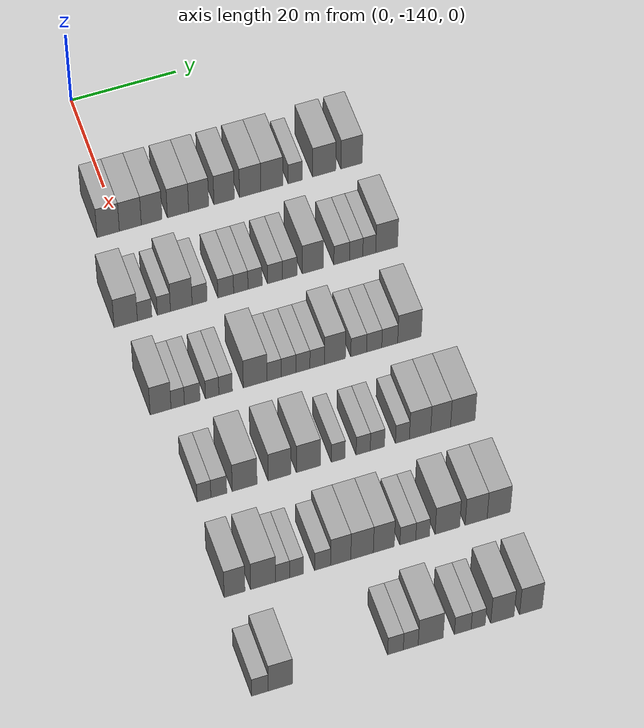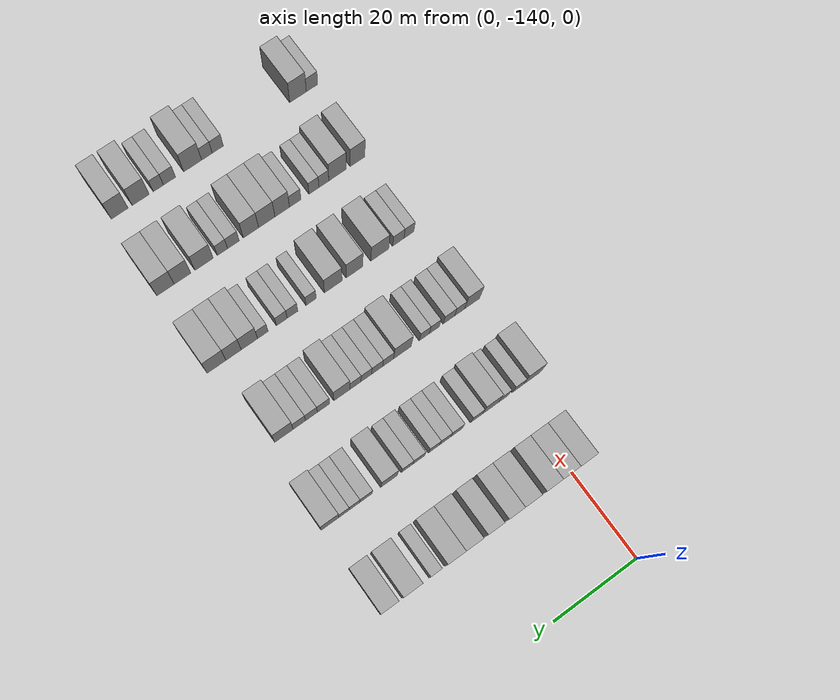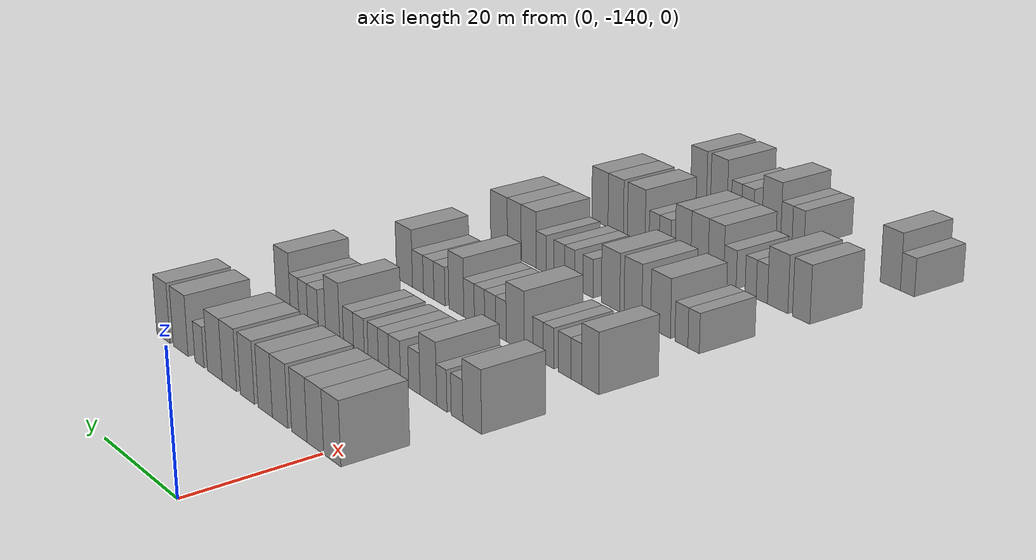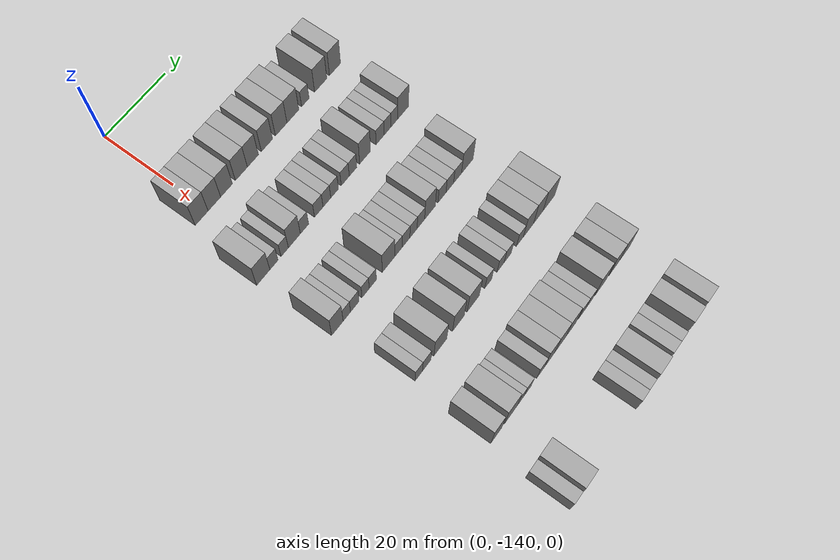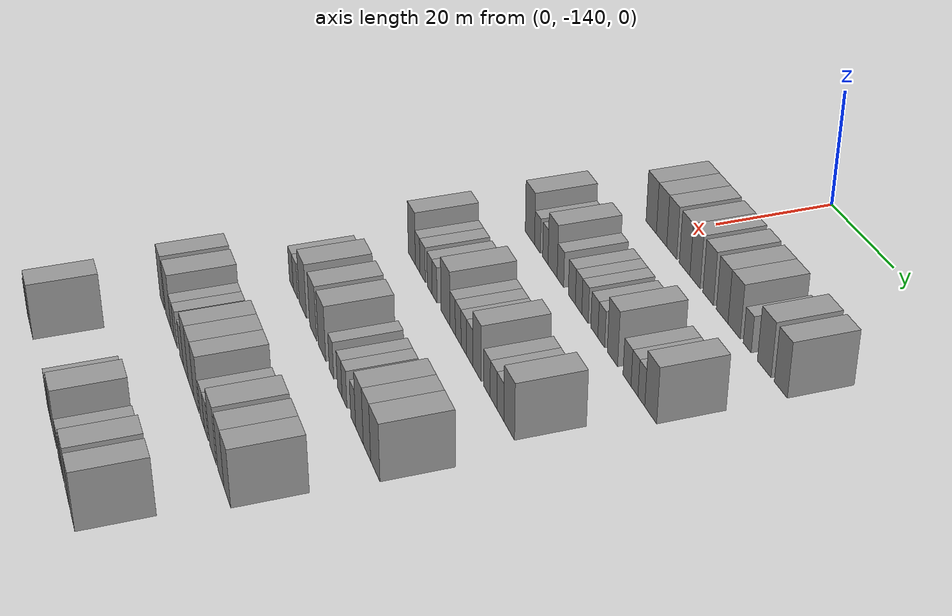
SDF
<sdf version="1.6">
 <world name="default">
  <model name="building_50">
   <static>1</static>
   <pose>25.0000 -142.2751 0 0.000000 0.000000 0.000000</pose>
   <link name="link">
    <pose>0 0 4.50 0 0 0</pose>
    <collision name="collision"><geometry><box><size>10.0000 4.1628 9.0000</size></box></geometry></collision>
    <visual name="visual">
     <cast_shadows>0</cast_shadows>
     <geometry><box><size>10.0000 4.1628 9.0000</size></box></geometry>
     <material>
      <script>
       <uri>model://grey_wall/materials/scripts</uri>
       <uri>model://grey_wall/materials/textures</uri>
       <name>vrc/grey_wall</name>
      </script>
     </material>
    </visual>
   </link>
  </model>
  <model name="building_51">
   <static>1</static>
   <pose>25.0000 -138.1461 0 0.000000 0.000000 0.000000</pose>
   <link name="link">
    <pose>0 0 4.50 0 0 0</pose>
    <collision name="collision"><geometry><box><size>10.0000 4.0952 9.0000</size></box></geometry></collision>
    <visual name="visual">
     <cast_shadows>0</cast_shadows>
     <geometry><box><size>10.0000 4.0952 9.0000</size></box></geometry>
     <material>
      <script>
       <uri>model://grey_wall/materials/scripts</uri>
       <uri>model://grey_wall/materials/textures</uri>
       <name>vrc/grey_wall</name>
      </script>
     </material>
    </visual>
   </link>
  </model>
  <model name="building_52">
   <static>1</static>
   <pose>25.0000 -134.1554 0 0.000000 0.000000 0.000000</pose>
   <link name="link">
    <pose>0 0 4.50 0 0 0</pose>
    <collision name="collision"><geometry><box><size>10.0000 3.8862 9.0000</size></box></geometry></collision>
    <visual name="visual">
     <cast_shadows>0</cast_shadows>
     <geometry><box><size>10.0000 3.8862 9.0000</size></box></geometry>
     <material>
      <script>
       <uri>model://grey_wall/materials/scripts</uri>
       <uri>model://grey_wall/materials/textures</uri>
       <name>vrc/grey_wall</name>
      </script>
     </material>
    </visual>
   </link>
  </model>
  <model name="building_53">
   <static>1</static>
   <pose>25.0000 -129.2157 0 0.000000 0.000000 0.000000</pose>
   <link name="link">
    <pose>0 0 4.50 0 0 0</pose>
    <collision name="collision"><geometry><box><size>10.0000 3.9932 9.0000</size></box></geometry></collision>
    <visual name="visual">
     <cast_shadows>0</cast_shadows>
     <geometry><box><size>10.0000 3.9932 9.0000</size></box></geometry>
     <material>
      <script>
       <uri>model://grey_wall/materials/scripts</uri>
       <uri>model://grey_wall/materials/textures</uri>
       <name>vrc/grey_wall</name>
      </script>
     </material>
    </visual>
   </link>
  </model>
  <model name="building_54">
   <static>1</static>
   <pose>25.0000 -125.3410 0 0.000000 0.000000 0.000000</pose>
   <link name="link">
    <pose>0 0 4.50 0 0 0</pose>
    <collision name="collision"><geometry><box><size>10.0000 3.7561 9.0000</size></box></geometry></collision>
    <visual name="visual">
     <cast_shadows>0</cast_shadows>
     <geometry><box><size>10.0000 3.7561 9.0000</size></box></geometry>
     <material>
      <script>
       <uri>model://grey_wall/materials/scripts</uri>
       <uri>model://grey_wall/materials/textures</uri>
       <name>vrc/grey_wall</name>
      </script>
     </material>
    </visual>
   </link>
  </model>
  <model name="building_55">
   <static>1</static>
   <pose>25.0000 -120.5500 0 0.000000 0.000000 0.000000</pose>
   <link name="link">
    <pose>0 0 4.50 0 0 0</pose>
    <collision name="collision"><geometry><box><size>10.0000 3.8260 9.0000</size></box></geometry></collision>
    <visual name="visual">
     <cast_shadows>0</cast_shadows>
     <geometry><box><size>10.0000 3.8260 9.0000</size></box></geometry>
     <material>
      <script>
       <uri>model://grey_wall/materials/scripts</uri>
       <uri>model://grey_wall/materials/textures</uri>
       <name>vrc/grey_wall</name>
      </script>
     </material>
    </visual>
   </link>
  </model>
  <model name="building_56">
   <static>1</static>
   <pose>25.0000 -115.6265 0 0.000000 0.000000 0.000000</pose>
   <link name="link">
    <pose>0 0 4.50 0 0 0</pose>
    <collision name="collision"><geometry><box><size>10.0000 4.0209 9.0000</size></box></geometry></collision>
    <visual name="visual">
     <cast_shadows>0</cast_shadows>
     <geometry><box><size>10.0000 4.0209 9.0000</size></box></geometry>
     <material>
      <script>
       <uri>model://grey_wall/materials/scripts</uri>
       <uri>model://grey_wall/materials/textures</uri>
       <name>vrc/grey_wall</name>
      </script>
     </material>
    </visual>
   </link>
  </model>
  <model name="building_57">
   <static>1</static>
   <pose>25.0000 -111.5318 0 0.000000 0.000000 0.000000</pose>
   <link name="link">
    <pose>0 0 4.50 0 0 0</pose>
    <collision name="collision"><geometry><box><size>10.0000 4.1685 9.0000</size></box></geometry></collision>
    <visual name="visual">
     <cast_shadows>0</cast_shadows>
     <geometry><box><size>10.0000 4.1685 9.0000</size></box></geometry>
     <material>
      <script>
       <uri>model://grey_wall/materials/scripts</uri>
       <uri>model://grey_wall/materials/textures</uri>
       <name>vrc/grey_wall</name>
      </script>
     </material>
    </visual>
   </link>
  </model>
  <model name="building_58">
   <static>1</static>
   <pose>25.0000 -107.1280 0 0.000000 0.000000 0.000000</pose>
   <link name="link">
    <pose>0 0 3.00 0 0 0</pose>
    <collision name="collision"><geometry><box><size>10.0000 2.6391 6.0000</size></box></geometry></collision>
    <visual name="visual">
     <cast_shadows>0</cast_shadows>
     <geometry><box><size>10.0000 2.6391 6.0000</size></box></geometry>
     <material>
      <script>
       <uri>model://grey_wall/materials/scripts</uri>
       <uri>model://grey_wall/materials/textures</uri>
       <name>vrc/grey_wall</name>
      </script>
     </material>
    </visual>
   </link>
  </model>
  <model name="building_59">
   <static>1</static>
   <pose>25.0000 -101.6160 0 0.000000 0.000000 0.000000</pose>
   <link name="link">
    <pose>0 0 4.50 0 0 0</pose>
    <collision name="collision"><geometry><box><size>10.0000 4.3848 9.0000</size></box></geometry></collision>
    <visual name="visual">
     <cast_shadows>0</cast_shadows>
     <geometry><box><size>10.0000 4.3848 9.0000</size></box></geometry>
     <material>
      <script>
       <uri>model://grey_wall/materials/scripts</uri>
       <uri>model://grey_wall/materials/textures</uri>
       <name>vrc/grey_wall</name>
      </script>
     </material>
    </visual>
   </link>
  </model>
  <model name="building_60">
   <static>1</static>
   <pose>25.0000 -96.4047 0 0.000000 0.000000 0.000000</pose>
   <link name="link">
    <pose>0 0 4.50 0 0 0</pose>
    <collision name="collision"><geometry><box><size>10.0000 4.0377 9.0000</size></box></geometry></collision>
    <visual name="visual">
     <cast_shadows>0</cast_shadows>
     <geometry><box><size>10.0000 4.0377 9.0000</size></box></geometry>
     <material>
      <script>
       <uri>model://grey_wall/materials/scripts</uri>
       <uri>model://grey_wall/materials/textures</uri>
       <name>vrc/grey_wall</name>
      </script>
     </material>
    </visual>
   </link>
  </model>
  <model name="building_220">
   <static>1</static>
   <pose>44.0000 -144.9630 0 0.000000 0.000000 0.000000</pose>
   <link name="link">
    <pose>0 0 4.50 0 0 0</pose>
    <collision name="collision"><geometry><box><size>10.0000 4.2809 9.0000</size></box></geometry></collision>
    <visual name="visual">
     <cast_shadows>0</cast_shadows>
     <geometry><box><size>10.0000 4.2809 9.0000</size></box></geometry>
     <material>
      <script>
       <uri>model://grey_wall/materials/scripts</uri>
       <uri>model://grey_wall/materials/textures</uri>
       <name>vrc/grey_wall</name>
      </script>
     </material>
    </visual>
   </link>
  </model>
  <model name="building_221">
   <static>1</static>
   <pose>44.0000 -141.4853 0 0.000000 0.000000 0.000000</pose>
   <link name="link">
    <pose>0 0 3.00 0 0 0</pose>
    <collision name="collision"><geometry><box><size>10.0000 2.6745 6.0000</size></box></geometry></collision>
    <visual name="visual">
     <cast_shadows>0</cast_shadows>
     <geometry><box><size>10.0000 2.6745 6.0000</size></box></geometry>
     <material>
      <script>
       <uri>model://grey_wall/materials/scripts</uri>
       <uri>model://grey_wall/materials/textures</uri>
       <name>vrc/grey_wall</name>
      </script>
     </material>
    </visual>
   </link>
  </model>
  <model name="building_222">
   <static>1</static>
   <pose>44.0000 -137.9323 0 0.000000 0.000000 0.000000</pose>
   <link name="link">
    <pose>0 0 3.00 0 0 0</pose>
    <collision name="collision"><geometry><box><size>10.0000 2.4314 6.0000</size></box></geometry></collision>
    <visual name="visual">
     <cast_shadows>0</cast_shadows>
     <geometry><box><size>10.0000 2.4314 6.0000</size></box></geometry>
     <material>
      <script>
       <uri>model://grey_wall/materials/scripts</uri>
       <uri>model://grey_wall/materials/textures</uri>
       <name>vrc/grey_wall</name>
      </script>
     </material>
    </visual>
   </link>
  </model>
  <model name="building_223">
   <static>1</static>
   <pose>44.0000 -134.7167 0 0.000000 0.000000 0.000000</pose>
   <link name="link">
    <pose>0 0 4.50 0 0 0</pose>
    <collision name="collision"><geometry><box><size>10.0000 3.9998 9.0000</size></box></geometry></collision>
    <visual name="visual">
     <cast_shadows>0</cast_shadows>
     <geometry><box><size>10.0000 3.9998 9.0000</size></box></geometry>
     <material>
      <script>
       <uri>model://grey_wall/materials/scripts</uri>
       <uri>model://grey_wall/materials/textures</uri>
       <name>vrc/grey_wall</name>
      </script>
     </material>
    </visual>
   </link>
  </model>
  <model name="building_224">
   <static>1</static>
   <pose>44.0000 -131.3244 0 0.000000 0.000000 0.000000</pose>
   <link name="link">
    <pose>0 0 3.00 0 0 0</pose>
    <collision name="collision"><geometry><box><size>10.0000 2.7848 6.0000</size></box></geometry></collision>
    <visual name="visual">
     <cast_shadows>0</cast_shadows>
     <geometry><box><size>10.0000 2.7848 6.0000</size></box></geometry>
     <material>
      <script>
       <uri>model://grey_wall/materials/scripts</uri>
       <uri>model://grey_wall/materials/textures</uri>
       <name>vrc/grey_wall</name>
      </script>
     </material>
    </visual>
   </link>
  </model>
  <model name="building_225">
   <static>1</static>
   <pose>44.0000 -126.4768 0 0.000000 0.000000 0.000000</pose>
   <link name="link">
    <pose>0 0 3.00 0 0 0</pose>
    <collision name="collision"><geometry><box><size>10.0000 2.9105 6.0000</size></box></geometry></collision>
    <visual name="visual">
     <cast_shadows>0</cast_shadows>
     <geometry><box><size>10.0000 2.9105 6.0000</size></box></geometry>
     <material>
      <script>
       <uri>model://grey_wall/materials/scripts</uri>
       <uri>model://grey_wall/materials/textures</uri>
       <name>vrc/grey_wall</name>
      </script>
     </material>
    </visual>
   </link>
  </model>
  <model name="building_226">
   <static>1</static>
   <pose>44.0000 -123.6899 0 0.000000 0.000000 0.000000</pose>
   <link name="link">
    <pose>0 0 3.00 0 0 0</pose>
    <collision name="collision"><geometry><box><size>10.0000 2.6633 6.0000</size></box></geometry></collision>
    <visual name="visual">
     <cast_shadows>0</cast_shadows>
     <geometry><box><size>10.0000 2.6633 6.0000</size></box></geometry>
     <material>
      <script>
       <uri>model://grey_wall/materials/scripts</uri>
       <uri>model://grey_wall/materials/textures</uri>
       <name>vrc/grey_wall</name>
      </script>
     </material>
    </visual>
   </link>
  </model>
  <model name="building_227">
   <static>1</static>
   <pose>44.0000 -121.0398 0 0.000000 0.000000 0.000000</pose>
   <link name="link">
    <pose>0 0 3.00 0 0 0</pose>
    <collision name="collision"><geometry><box><size>10.0000 2.6369 6.0000</size></box></geometry></collision>
    <visual name="visual">
     <cast_shadows>0</cast_shadows>
     <geometry><box><size>10.0000 2.6369 6.0000</size></box></geometry>
     <material>
      <script>
       <uri>model://grey_wall/materials/scripts</uri>
       <uri>model://grey_wall/materials/textures</uri>
       <name>vrc/grey_wall</name>
      </script>
     </material>
    </visual>
   </link>
  </model>
  <model name="building_228">
   <static>1</static>
   <pose>44.0000 -117.3161 0 0.000000 0.000000 0.000000</pose>
   <link name="link">
    <pose>0 0 3.00 0 0 0</pose>
    <collision name="collision"><geometry><box><size>10.0000 2.8104 6.0000</size></box></geometry></collision>
    <visual name="visual">
     <cast_shadows>0</cast_shadows>
     <geometry><box><size>10.0000 2.8104 6.0000</size></box></geometry>
     <material>
      <script>
       <uri>model://grey_wall/materials/scripts</uri>
       <uri>model://grey_wall/materials/textures</uri>
       <name>vrc/grey_wall</name>
      </script>
     </material>
    </visual>
   </link>
  </model>
  <model name="building_229">
   <static>1</static>
   <pose>44.0000 -114.5744 0 0.000000 0.000000 0.000000</pose>
   <link name="link">
    <pose>0 0 3.00 0 0 0</pose>
    <collision name="collision"><geometry><box><size>10.0000 2.6731 6.0000</size></box></geometry></collision>
    <visual name="visual">
     <cast_shadows>0</cast_shadows>
     <geometry><box><size>10.0000 2.6731 6.0000</size></box></geometry>
     <material>
      <script>
       <uri>model://grey_wall/materials/scripts</uri>
       <uri>model://grey_wall/materials/textures</uri>
       <name>vrc/grey_wall</name>
      </script>
     </material>
    </visual>
   </link>
  </model>
  <model name="building_230">
   <static>1</static>
   <pose>44.0000 -110.2824 0 0.000000 0.000000 0.000000</pose>
   <link name="link">
    <pose>0 0 4.50 0 0 0</pose>
    <collision name="collision"><geometry><box><size>10.0000 3.9110 9.0000</size></box></geometry></collision>
    <visual name="visual">
     <cast_shadows>0</cast_shadows>
     <geometry><box><size>10.0000 3.9110 9.0000</size></box></geometry>
     <material>
      <script>
       <uri>model://grey_wall/materials/scripts</uri>
       <uri>model://grey_wall/materials/textures</uri>
       <name>vrc/grey_wall</name>
      </script>
     </material>
    </visual>
   </link>
  </model>
  <model name="building_231">
   <static>1</static>
   <pose>44.0000 -104.8564 0 0.000000 0.000000 0.000000</pose>
   <link name="link">
    <pose>0 0 3.00 0 0 0</pose>
    <collision name="collision"><geometry><box><size>10.0000 2.9410 6.0000</size></box></geometry></collision>
    <visual name="visual">
     <cast_shadows>0</cast_shadows>
     <geometry><box><size>10.0000 2.9410 6.0000</size></box></geometry>
     <material>
      <script>
       <uri>model://grey_wall/materials/scripts</uri>
       <uri>model://grey_wall/materials/textures</uri>
       <name>vrc/grey_wall</name>
      </script>
     </material>
    </visual>
   </link>
  </model>
  <model name="building_232">
   <static>1</static>
   <pose>44.0000 -102.1391 0 0.000000 0.000000 0.000000</pose>
   <link name="link">
    <pose>0 0 3.00 0 0 0</pose>
    <collision name="collision"><geometry><box><size>10.0000 2.4936 6.0000</size></box></geometry></collision>
    <visual name="visual">
     <cast_shadows>0</cast_shadows>
     <geometry><box><size>10.0000 2.4936 6.0000</size></box></geometry>
     <material>
      <script>
       <uri>model://grey_wall/materials/scripts</uri>
       <uri>model://grey_wall/materials/textures</uri>
       <name>vrc/grey_wall</name>
      </script>
     </material>
    </visual>
   </link>
  </model>
  <model name="building_233">
   <static>1</static>
   <pose>44.0000 -99.6777 0 0.000000 0.000000 0.000000</pose>
   <link name="link">
    <pose>0 0 3.00 0 0 0</pose>
    <collision name="collision"><geometry><box><size>10.0000 2.4291 6.0000</size></box></geometry></collision>
    <visual name="visual">
     <cast_shadows>0</cast_shadows>
     <geometry><box><size>10.0000 2.4291 6.0000</size></box></geometry>
     <material>
      <script>
       <uri>model://grey_wall/materials/scripts</uri>
       <uri>model://grey_wall/materials/textures</uri>
       <name>vrc/grey_wall</name>
      </script>
     </material>
    </visual>
   </link>
  </model>
  <model name="building_234">
   <static>1</static>
   <pose>44.0000 -96.4054 0 0.000000 0.000000 0.000000</pose>
   <link name="link">
    <pose>0 0 4.50 0 0 0</pose>
    <collision name="collision"><geometry><box><size>10.0000 4.1155 9.0000</size></box></geometry></collision>
    <visual name="visual">
     <cast_shadows>0</cast_shadows>
     <geometry><box><size>10.0000 4.1155 9.0000</size></box></geometry>
     <material>
      <script>
       <uri>model://grey_wall/materials/scripts</uri>
       <uri>model://grey_wall/materials/textures</uri>
       <name>vrc/grey_wall</name>
      </script>
     </material>
    </visual>
   </link>
  </model>
  <model name="building_400">
   <static>1</static>
   <pose>63.0000 -144.5955 0 0.000000 0.000000 0.000000</pose>
   <link name="link">
    <pose>0 0 4.50 0 0 0</pose>
    <collision name="collision"><geometry><box><size>10.0000 3.7842 9.0000</size></box></geometry></collision>
    <visual name="visual">
     <cast_shadows>0</cast_shadows>
     <geometry><box><size>10.0000 3.7842 9.0000</size></box></geometry>
     <material>
      <script>
       <uri>model://grey_wall/materials/scripts</uri>
       <uri>model://grey_wall/materials/textures</uri>
       <name>vrc/grey_wall</name>
      </script>
     </material>
    </visual>
   </link>
  </model>
  <model name="building_401">
   <static>1</static>
   <pose>63.0000 -141.4828 0 0.000000 0.000000 0.000000</pose>
   <link name="link">
    <pose>0 0 3.00 0 0 0</pose>
    <collision name="collision"><geometry><box><size>10.0000 2.4413 6.0000</size></box></geometry></collision>
    <visual name="visual">
     <cast_shadows>0</cast_shadows>
     <geometry><box><size>10.0000 2.4413 6.0000</size></box></geometry>
     <material>
      <script>
       <uri>model://grey_wall/materials/scripts</uri>
       <uri>model://grey_wall/materials/textures</uri>
       <name>vrc/grey_wall</name>
      </script>
     </material>
    </visual>
   </link>
  </model>
  <model name="building_402">
   <static>1</static>
   <pose>63.0000 -138.8406 0 0.000000 0.000000 0.000000</pose>
   <link name="link">
    <pose>0 0 3.00 0 0 0</pose>
    <collision name="collision"><geometry><box><size>10.0000 2.8430 6.0000</size></box></geometry></collision>
    <visual name="visual">
     <cast_shadows>0</cast_shadows>
     <geometry><box><size>10.0000 2.8430 6.0000</size></box></geometry>
     <material>
      <script>
       <uri>model://grey_wall/materials/scripts</uri>
       <uri>model://grey_wall/materials/textures</uri>
       <name>vrc/grey_wall</name>
      </script>
     </material>
    </visual>
   </link>
  </model>
  <model name="building_403">
   <static>1</static>
   <pose>63.0000 -135.2013 0 0.000000 0.000000 0.000000</pose>
   <link name="link">
    <pose>0 0 3.00 0 0 0</pose>
    <collision name="collision"><geometry><box><size>10.0000 2.4356 6.0000</size></box></geometry></collision>
    <visual name="visual">
     <cast_shadows>0</cast_shadows>
     <geometry><box><size>10.0000 2.4356 6.0000</size></box></geometry>
     <material>
      <script>
       <uri>model://grey_wall/materials/scripts</uri>
       <uri>model://grey_wall/materials/textures</uri>
       <name>vrc/grey_wall</name>
      </script>
     </material>
    </visual>
   </link>
  </model>
  <model name="building_404">
   <static>1</static>
   <pose>63.0000 -132.7485 0 0.000000 0.000000 0.000000</pose>
   <link name="link">
    <pose>0 0 3.00 0 0 0</pose>
    <collision name="collision"><geometry><box><size>10.0000 2.4699 6.0000</size></box></geometry></collision>
    <visual name="visual">
     <cast_shadows>0</cast_shadows>
     <geometry><box><size>10.0000 2.4699 6.0000</size></box></geometry>
     <material>
      <script>
       <uri>model://grey_wall/materials/scripts</uri>
       <uri>model://grey_wall/materials/textures</uri>
       <name>vrc/grey_wall</name>
      </script>
     </material>
    </visual>
   </link>
  </model>
  <model name="building_405">
   <static>1</static>
   <pose>63.0000 -127.3451 0 0.000000 0.000000 0.000000</pose>
   <link name="link">
    <pose>0 0 4.50 0 0 0</pose>
    <collision name="collision"><geometry><box><size>10.0000 4.3370 9.0000</size></box></geometry></collision>
    <visual name="visual">
     <cast_shadows>0</cast_shadows>
     <geometry><box><size>10.0000 4.3370 9.0000</size></box></geometry>
     <material>
      <script>
       <uri>model://grey_wall/materials/scripts</uri>
       <uri>model://grey_wall/materials/textures</uri>
       <name>vrc/grey_wall</name>
      </script>
     </material>
    </visual>
   </link>
  </model>
  <model name="building_406">
   <static>1</static>
   <pose>63.0000 -123.8718 0 0.000000 0.000000 0.000000</pose>
   <link name="link">
    <pose>0 0 3.00 0 0 0</pose>
    <collision name="collision"><geometry><box><size>10.0000 2.6096 6.0000</size></box></geometry></collision>
    <visual name="visual">
     <cast_shadows>0</cast_shadows>
     <geometry><box><size>10.0000 2.6096 6.0000</size></box></geometry>
     <material>
      <script>
       <uri>model://grey_wall/materials/scripts</uri>
       <uri>model://grey_wall/materials/textures</uri>
       <name>vrc/grey_wall</name>
      </script>
     </material>
    </visual>
   </link>
  </model>
  <model name="building_407">
   <static>1</static>
   <pose>63.0000 -121.2201 0 0.000000 0.000000 0.000000</pose>
   <link name="link">
    <pose>0 0 3.00 0 0 0</pose>
    <collision name="collision"><geometry><box><size>10.0000 2.6938 6.0000</size></box></geometry></collision>
    <visual name="visual">
     <cast_shadows>0</cast_shadows>
     <geometry><box><size>10.0000 2.6938 6.0000</size></box></geometry>
     <material>
      <script>
       <uri>model://grey_wall/materials/scripts</uri>
       <uri>model://grey_wall/materials/textures</uri>
       <name>vrc/grey_wall</name>
      </script>
     </material>
    </visual>
   </link>
  </model>
  <model name="building_408">
   <static>1</static>
   <pose>63.0000 -118.5775 0 0.000000 0.000000 0.000000</pose>
   <link name="link">
    <pose>0 0 3.00 0 0 0</pose>
    <collision name="collision"><geometry><box><size>10.0000 2.5914 6.0000</size></box></geometry></collision>
    <visual name="visual">
     <cast_shadows>0</cast_shadows>
     <geometry><box><size>10.0000 2.5914 6.0000</size></box></geometry>
     <material>
      <script>
       <uri>model://grey_wall/materials/scripts</uri>
       <uri>model://grey_wall/materials/textures</uri>
       <name>vrc/grey_wall</name>
      </script>
     </material>
    </visual>
   </link>
  </model>
  <model name="building_409">
   <static>1</static>
   <pose>63.0000 -115.9377 0 0.000000 0.000000 0.000000</pose>
   <link name="link">
    <pose>0 0 3.00 0 0 0</pose>
    <collision name="collision"><geometry><box><size>10.0000 2.6881 6.0000</size></box></geometry></collision>
    <visual name="visual">
     <cast_shadows>0</cast_shadows>
     <geometry><box><size>10.0000 2.6881 6.0000</size></box></geometry>
     <material>
      <script>
       <uri>model://grey_wall/materials/scripts</uri>
       <uri>model://grey_wall/materials/textures</uri>
       <name>vrc/grey_wall</name>
      </script>
     </material>
    </visual>
   </link>
  </model>
  <model name="building_410">
   <static>1</static>
   <pose>63.0000 -112.6688 0 0.000000 0.000000 0.000000</pose>
   <link name="link">
    <pose>0 0 4.50 0 0 0</pose>
    <collision name="collision"><geometry><box><size>10.0000 3.8497 9.0000</size></box></geometry></collision>
    <visual name="visual">
     <cast_shadows>0</cast_shadows>
     <geometry><box><size>10.0000 3.8497 9.0000</size></box></geometry>
     <material>
      <script>
       <uri>model://grey_wall/materials/scripts</uri>
       <uri>model://grey_wall/materials/textures</uri>
       <name>vrc/grey_wall</name>
      </script>
     </material>
    </visual>
   </link>
  </model>
  <model name="building_411">
   <static>1</static>
   <pose>63.0000 -108.2793 0 0.000000 0.000000 0.000000</pose>
   <link name="link">
    <pose>0 0 3.00 0 0 0</pose>
    <collision name="collision"><geometry><box><size>10.0000 2.9293 6.0000</size></box></geometry></collision>
    <visual name="visual">
     <cast_shadows>0</cast_shadows>
     <geometry><box><size>10.0000 2.9293 6.0000</size></box></geometry>
     <material>
      <script>
       <uri>model://grey_wall/materials/scripts</uri>
       <uri>model://grey_wall/materials/textures</uri>
       <name>vrc/grey_wall</name>
      </script>
     </material>
    </visual>
   </link>
  </model>
  <model name="building_412">
   <static>1</static>
   <pose>63.0000 -105.4114 0 0.000000 0.000000 0.000000</pose>
   <link name="link">
    <pose>0 0 3.00 0 0 0</pose>
    <collision name="collision"><geometry><box><size>10.0000 2.8065 6.0000</size></box></geometry></collision>
    <visual name="visual">
     <cast_shadows>0</cast_shadows>
     <geometry><box><size>10.0000 2.8065 6.0000</size></box></geometry>
     <material>
      <script>
       <uri>model://grey_wall/materials/scripts</uri>
       <uri>model://grey_wall/materials/textures</uri>
       <name>vrc/grey_wall</name>
      </script>
     </material>
    </visual>
   </link>
  </model>
  <model name="building_413">
   <static>1</static>
   <pose>63.0000 -102.5342 0 0.000000 0.000000 0.000000</pose>
   <link name="link">
    <pose>0 0 3.00 0 0 0</pose>
    <collision name="collision"><geometry><box><size>10.0000 2.9479 6.0000</size></box></geometry></collision>
    <visual name="visual">
     <cast_shadows>0</cast_shadows>
     <geometry><box><size>10.0000 2.9479 6.0000</size></box></geometry>
     <material>
      <script>
       <uri>model://grey_wall/materials/scripts</uri>
       <uri>model://grey_wall/materials/textures</uri>
       <name>vrc/grey_wall</name>
      </script>
     </material>
    </visual>
   </link>
  </model>
  <model name="building_414">
   <static>1</static>
   <pose>63.0000 -98.8764 0 0.000000 0.000000 0.000000</pose>
   <link name="link">
    <pose>0 0 4.50 0 0 0</pose>
    <collision name="collision"><geometry><box><size>10.0000 4.3677 9.0000</size></box></geometry></collision>
    <visual name="visual">
     <cast_shadows>0</cast_shadows>
     <geometry><box><size>10.0000 4.3677 9.0000</size></box></geometry>
     <material>
      <script>
       <uri>model://grey_wall/materials/scripts</uri>
       <uri>model://grey_wall/materials/textures</uri>
       <name>vrc/grey_wall</name>
      </script>
     </material>
    </visual>
   </link>
  </model>
  <model name="building_566">
   <static>1</static>
   <pose>82.0000 -142.8751 0 0.000000 0.000000 0.000000</pose>
   <link name="link">
    <pose>0 0 3.00 0 0 0</pose>
    <collision name="collision"><geometry><box><size>10.0000 2.4755 6.0000</size></box></geometry></collision>
    <visual name="visual">
     <cast_shadows>0</cast_shadows>
     <geometry><box><size>10.0000 2.4755 6.0000</size></box></geometry>
     <material>
      <script>
       <uri>model://grey_wall/materials/scripts</uri>
       <uri>model://grey_wall/materials/textures</uri>
       <name>vrc/grey_wall</name>
      </script>
     </material>
    </visual>
   </link>
  </model>
  <model name="building_567">
   <static>1</static>
   <pose>82.0000 -140.2124 0 0.000000 0.000000 0.000000</pose>
   <link name="link">
    <pose>0 0 3.00 0 0 0</pose>
    <collision name="collision"><geometry><box><size>10.0000 2.8498 6.0000</size></box></geometry></collision>
    <visual name="visual">
     <cast_shadows>0</cast_shadows>
     <geometry><box><size>10.0000 2.8498 6.0000</size></box></geometry>
     <material>
      <script>
       <uri>model://grey_wall/materials/scripts</uri>
       <uri>model://grey_wall/materials/textures</uri>
       <name>vrc/grey_wall</name>
      </script>
     </material>
    </visual>
   </link>
  </model>
  <model name="building_568">
   <static>1</static>
   <pose>82.0000 -135.5611 0 0.000000 0.000000 0.000000</pose>
   <link name="link">
    <pose>0 0 4.50 0 0 0</pose>
    <collision name="collision"><geometry><box><size>10.0000 4.4527 9.0000</size></box></geometry></collision>
    <visual name="visual">
     <cast_shadows>0</cast_shadows>
     <geometry><box><size>10.0000 4.4527 9.0000</size></box></geometry>
     <material>
      <script>
       <uri>model://grey_wall/materials/scripts</uri>
       <uri>model://grey_wall/materials/textures</uri>
       <name>vrc/grey_wall</name>
      </script>
     </material>
    </visual>
   </link>
  </model>
  <model name="building_569">
   <static>1</static>
   <pose>82.0000 -129.2792 0 0.000000 0.000000 0.000000</pose>
   <link name="link">
    <pose>0 0 4.50 0 0 0</pose>
    <collision name="collision"><geometry><box><size>10.0000 4.1110 9.0000</size></box></geometry></collision>
    <visual name="visual">
     <cast_shadows>0</cast_shadows>
     <geometry><box><size>10.0000 4.1110 9.0000</size></box></geometry>
     <material>
      <script>
       <uri>model://grey_wall/materials/scripts</uri>
       <uri>model://grey_wall/materials/textures</uri>
       <name>vrc/grey_wall</name>
      </script>
     </material>
    </visual>
   </link>
  </model>
  <model name="building_570">
   <static>1</static>
   <pose>82.0000 -124.0464 0 0.000000 0.000000 0.000000</pose>
   <link name="link">
    <pose>0 0 4.50 0 0 0</pose>
    <collision name="collision"><geometry><box><size>10.0000 4.3547 9.0000</size></box></geometry></collision>
    <visual name="visual">
     <cast_shadows>0</cast_shadows>
     <geometry><box><size>10.0000 4.3547 9.0000</size></box></geometry>
     <material>
      <script>
       <uri>model://grey_wall/materials/scripts</uri>
       <uri>model://grey_wall/materials/textures</uri>
       <name>vrc/grey_wall</name>
      </script>
     </material>
    </visual>
   </link>
  </model>
  <model name="building_571">
   <static>1</static>
   <pose>82.0000 -118.6269 0 0.000000 0.000000 0.000000</pose>
   <link name="link">
    <pose>0 0 3.00 0 0 0</pose>
    <collision name="collision"><geometry><box><size>10.0000 2.4843 6.0000</size></box></geometry></collision>
    <visual name="visual">
     <cast_shadows>0</cast_shadows>
     <geometry><box><size>10.0000 2.4843 6.0000</size></box></geometry>
     <material>
      <script>
       <uri>model://grey_wall/materials/scripts</uri>
       <uri>model://grey_wall/materials/textures</uri>
       <name>vrc/grey_wall</name>
      </script>
     </material>
    </visual>
   </link>
  </model>
  <model name="building_572">
   <static>1</static>
   <pose>82.0000 -114.0950 0 0.000000 0.000000 0.000000</pose>
   <link name="link">
    <pose>0 0 3.00 0 0 0</pose>
    <collision name="collision"><geometry><box><size>10.0000 2.5794 6.0000</size></box></geometry></collision>
    <visual name="visual">
     <cast_shadows>0</cast_shadows>
     <geometry><box><size>10.0000 2.5794 6.0000</size></box></geometry>
     <material>
      <script>
       <uri>model://grey_wall/materials/scripts</uri>
       <uri>model://grey_wall/materials/textures</uri>
       <name>vrc/grey_wall</name>
      </script>
     </material>
    </visual>
   </link>
  </model>
  <model name="building_573">
   <static>1</static>
   <pose>82.0000 -111.5020 0 0.000000 0.000000 0.000000</pose>
   <link name="link">
    <pose>0 0 3.00 0 0 0</pose>
    <collision name="collision"><geometry><box><size>10.0000 2.6068 6.0000</size></box></geometry></collision>
    <visual name="visual">
     <cast_shadows>0</cast_shadows>
     <geometry><box><size>10.0000 2.6068 6.0000</size></box></geometry>
     <material>
      <script>
       <uri>model://grey_wall/materials/scripts</uri>
       <uri>model://grey_wall/materials/textures</uri>
       <name>vrc/grey_wall</name>
      </script>
     </material>
    </visual>
   </link>
  </model>
  <model name="building_574">
   <static>1</static>
   <pose>82.0000 -106.9283 0 0.000000 0.000000 0.000000</pose>
   <link name="link">
    <pose>0 0 3.00 0 0 0</pose>
    <collision name="collision"><geometry><box><size>10.0000 2.5406 6.0000</size></box></geometry></collision>
    <visual name="visual">
     <cast_shadows>0</cast_shadows>
     <geometry><box><size>10.0000 2.5406 6.0000</size></box></geometry>
     <material>
      <script>
       <uri>model://grey_wall/materials/scripts</uri>
       <uri>model://grey_wall/materials/textures</uri>
       <name>vrc/grey_wall</name>
      </script>
     </material>
    </visual>
   </link>
  </model>
  <model name="building_575">
   <static>1</static>
   <pose>82.0000 -103.7059 0 0.000000 0.000000 0.000000</pose>
   <link name="link">
    <pose>0 0 4.50 0 0 0</pose>
    <collision name="collision"><geometry><box><size>10.0000 3.9042 9.0000</size></box></geometry></collision>
    <visual name="visual">
     <cast_shadows>0</cast_shadows>
     <geometry><box><size>10.0000 3.9042 9.0000</size></box></geometry>
     <material>
      <script>
       <uri>model://grey_wall/materials/scripts</uri>
       <uri>model://grey_wall/materials/textures</uri>
       <name>vrc/grey_wall</name>
      </script>
     </material>
    </visual>
   </link>
  </model>
  <model name="building_576">
   <static>1</static>
   <pose>82.0000 -99.9288 0 0.000000 0.000000 0.000000</pose>
   <link name="link">
    <pose>0 0 4.50 0 0 0</pose>
    <collision name="collision"><geometry><box><size>10.0000 3.6499 9.0000</size></box></geometry></collision>
    <visual name="visual">
     <cast_shadows>0</cast_shadows>
     <geometry><box><size>10.0000 3.6499 9.0000</size></box></geometry>
     <material>
      <script>
       <uri>model://grey_wall/materials/scripts</uri>
       <uri>model://grey_wall/materials/textures</uri>
       <name>vrc/grey_wall</name>
      </script>
     </material>
    </visual>
   </link>
  </model>
  <model name="building_577">
   <static>1</static>
   <pose>82.0000 -95.8591 0 0.000000 0.000000 0.000000</pose>
   <link name="link">
    <pose>0 0 4.50 0 0 0</pose>
    <collision name="collision"><geometry><box><size>10.0000 4.4894 9.0000</size></box></geometry></collision>
    <visual name="visual">
     <cast_shadows>0</cast_shadows>
     <geometry><box><size>10.0000 4.4894 9.0000</size></box></geometry>
     <material>
      <script>
       <uri>model://grey_wall/materials/scripts</uri>
       <uri>model://grey_wall/materials/textures</uri>
       <name>vrc/grey_wall</name>
      </script>
     </material>
    </visual>
   </link>
  </model>
  <model name="building_739">
   <static>1</static>
   <pose>101.0000 -143.6428 0 0.000000 0.000000 0.000000</pose>
   <link name="link">
    <pose>0 0 4.50 0 0 0</pose>
    <collision name="collision"><geometry><box><size>10.0000 3.6876 9.0000</size></box></geometry></collision>
    <visual name="visual">
     <cast_shadows>0</cast_shadows>
     <geometry><box><size>10.0000 3.6876 9.0000</size></box></geometry>
     <material>
      <script>
       <uri>model://grey_wall/materials/scripts</uri>
       <uri>model://grey_wall/materials/textures</uri>
       <name>vrc/grey_wall</name>
      </script>
     </material>
    </visual>
   </link>
  </model>
  <model name="building_740">
   <static>1</static>
   <pose>101.0000 -138.5893 0 0.000000 0.000000 0.000000</pose>
   <link name="link">
    <pose>0 0 4.50 0 0 0</pose>
    <collision name="collision"><geometry><box><size>10.0000 4.4194 9.0000</size></box></geometry></collision>
    <visual name="visual">
     <cast_shadows>0</cast_shadows>
     <geometry><box><size>10.0000 4.4194 9.0000</size></box></geometry>
     <material>
      <script>
       <uri>model://grey_wall/materials/scripts</uri>
       <uri>model://grey_wall/materials/textures</uri>
       <name>vrc/grey_wall</name>
      </script>
     </material>
    </visual>
   </link>
  </model>
  <model name="building_741">
   <static>1</static>
   <pose>101.0000 -135.1345 0 0.000000 0.000000 0.000000</pose>
   <link name="link">
    <pose>0 0 3.00 0 0 0</pose>
    <collision name="collision"><geometry><box><size>10.0000 2.4901 6.0000</size></box></geometry></collision>
    <visual name="visual">
     <cast_shadows>0</cast_shadows>
     <geometry><box><size>10.0000 2.4901 6.0000</size></box></geometry>
     <material>
      <script>
       <uri>model://grey_wall/materials/scripts</uri>
       <uri>model://grey_wall/materials/textures</uri>
       <name>vrc/grey_wall</name>
      </script>
     </material>
    </visual>
   </link>
  </model>
  <model name="building_742">
   <static>1</static>
   <pose>101.0000 -132.6549 0 0.000000 0.000000 0.000000</pose>
   <link name="link">
    <pose>0 0 3.00 0 0 0</pose>
    <collision name="collision"><geometry><box><size>10.0000 2.4691 6.0000</size></box></geometry></collision>
    <visual name="visual">
     <cast_shadows>0</cast_shadows>
     <geometry><box><size>10.0000 2.4691 6.0000</size></box></geometry>
     <material>
      <script>
       <uri>model://grey_wall/materials/scripts</uri>
       <uri>model://grey_wall/materials/textures</uri>
       <name>vrc/grey_wall</name>
      </script>
     </material>
    </visual>
   </link>
  </model>
  <model name="building_743">
   <static>1</static>
   <pose>101.0000 -127.9946 0 0.000000 0.000000 0.000000</pose>
   <link name="link">
    <pose>0 0 3.00 0 0 0</pose>
    <collision name="collision"><geometry><box><size>10.0000 2.8514 6.0000</size></box></geometry></collision>
    <visual name="visual">
     <cast_shadows>0</cast_shadows>
     <geometry><box><size>10.0000 2.8514 6.0000</size></box></geometry>
     <material>
      <script>
       <uri>model://grey_wall/materials/scripts</uri>
       <uri>model://grey_wall/materials/textures</uri>
       <name>vrc/grey_wall</name>
      </script>
     </material>
    </visual>
   </link>
  </model>
  <model name="building_744">
   <static>1</static>
   <pose>101.0000 -124.7561 0 0.000000 0.000000 0.000000</pose>
   <link name="link">
    <pose>0 0 4.50 0 0 0</pose>
    <collision name="collision"><geometry><box><size>10.0000 3.6257 9.0000</size></box></geometry></collision>
    <visual name="visual">
     <cast_shadows>0</cast_shadows>
     <geometry><box><size>10.0000 3.6257 9.0000</size></box></geometry>
     <material>
      <script>
       <uri>model://grey_wall/materials/scripts</uri>
       <uri>model://grey_wall/materials/textures</uri>
       <name>vrc/grey_wall</name>
      </script>
     </material>
    </visual>
   </link>
  </model>
  <model name="building_745">
   <static>1</static>
   <pose>101.0000 -120.9249 0 0.000000 0.000000 0.000000</pose>
   <link name="link">
    <pose>0 0 4.50 0 0 0</pose>
    <collision name="collision"><geometry><box><size>10.0000 4.0365 9.0000</size></box></geometry></collision>
    <visual name="visual">
     <cast_shadows>0</cast_shadows>
     <geometry><box><size>10.0000 4.0365 9.0000</size></box></geometry>
     <material>
      <script>
       <uri>model://grey_wall/materials/scripts</uri>
       <uri>model://grey_wall/materials/textures</uri>
       <name>vrc/grey_wall</name>
      </script>
     </material>
    </visual>
   </link>
  </model>
  <model name="building_746">
   <static>1</static>
   <pose>101.0000 -117.0247 0 0.000000 0.000000 0.000000</pose>
   <link name="link">
    <pose>0 0 4.50 0 0 0</pose>
    <collision name="collision"><geometry><box><size>10.0000 3.7640 9.0000</size></box></geometry></collision>
    <visual name="visual">
     <cast_shadows>0</cast_shadows>
     <geometry><box><size>10.0000 3.7640 9.0000</size></box></geometry>
     <material>
      <script>
       <uri>model://grey_wall/materials/scripts</uri>
       <uri>model://grey_wall/materials/textures</uri>
       <name>vrc/grey_wall</name>
      </script>
     </material>
    </visual>
   </link>
  </model>
  <model name="building_747">
   <static>1</static>
   <pose>101.0000 -112.7125 0 0.000000 0.000000 0.000000</pose>
   <link name="link">
    <pose>0 0 3.00 0 0 0</pose>
    <collision name="collision"><geometry><box><size>10.0000 2.8603 6.0000</size></box></geometry></collision>
    <visual name="visual">
     <cast_shadows>0</cast_shadows>
     <geometry><box><size>10.0000 2.8603 6.0000</size></box></geometry>
     <material>
      <script>
       <uri>model://grey_wall/materials/scripts</uri>
       <uri>model://grey_wall/materials/textures</uri>
       <name>vrc/grey_wall</name>
      </script>
     </material>
    </visual>
   </link>
  </model>
  <model name="building_748">
   <static>1</static>
   <pose>101.0000 -110.0393 0 0.000000 0.000000 0.000000</pose>
   <link name="link">
    <pose>0 0 3.00 0 0 0</pose>
    <collision name="collision"><geometry><box><size>10.0000 2.4861 6.0000</size></box></geometry></collision>
    <visual name="visual">
     <cast_shadows>0</cast_shadows>
     <geometry><box><size>10.0000 2.4861 6.0000</size></box></geometry>
     <material>
      <script>
       <uri>model://grey_wall/materials/scripts</uri>
       <uri>model://grey_wall/materials/textures</uri>
       <name>vrc/grey_wall</name>
      </script>
     </material>
    </visual>
   </link>
  </model>
  <model name="building_749">
   <static>1</static>
   <pose>101.0000 -105.5755 0 0.000000 0.000000 0.000000</pose>
   <link name="link">
    <pose>0 0 4.50 0 0 0</pose>
    <collision name="collision"><geometry><box><size>10.0000 4.4415 9.0000</size></box></geometry></collision>
    <visual name="visual">
     <cast_shadows>0</cast_shadows>
     <geometry><box><size>10.0000 4.4415 9.0000</size></box></geometry>
     <material>
      <script>
       <uri>model://grey_wall/materials/scripts</uri>
       <uri>model://grey_wall/materials/textures</uri>
       <name>vrc/grey_wall</name>
      </script>
     </material>
    </visual>
   </link>
  </model>
  <model name="building_750">
   <static>1</static>
   <pose>101.0000 -100.3648 0 0.000000 0.000000 0.000000</pose>
   <link name="link">
    <pose>0 0 4.50 0 0 0</pose>
    <collision name="collision"><geometry><box><size>10.0000 3.9797 9.0000</size></box></geometry></collision>
    <visual name="visual">
     <cast_shadows>0</cast_shadows>
     <geometry><box><size>10.0000 3.9797 9.0000</size></box></geometry>
     <material>
      <script>
       <uri>model://grey_wall/materials/scripts</uri>
       <uri>model://grey_wall/materials/textures</uri>
       <name>vrc/grey_wall</name>
      </script>
     </material>
    </visual>
   </link>
  </model>
  <model name="building_751">
   <static>1</static>
   <pose>101.0000 -96.2801 0 0.000000 0.000000 0.000000</pose>
   <link name="link">
    <pose>0 0 4.50 0 0 0</pose>
    <collision name="collision"><geometry><box><size>10.0000 4.1897 9.0000</size></box></geometry></collision>
    <visual name="visual">
     <cast_shadows>0</cast_shadows>
     <geometry><box><size>10.0000 4.1897 9.0000</size></box></geometry>
     <material>
      <script>
       <uri>model://grey_wall/materials/scripts</uri>
       <uri>model://grey_wall/materials/textures</uri>
       <name>vrc/grey_wall</name>
      </script>
     </material>
    </visual>
   </link>
  </model>
  <model name="building_916">
   <static>1</static>
   <pose>120.0000 -145.4850 0 0.000000 0.000000 0.000000</pose>
   <link name="link">
    <pose>0 0 3.00 0 0 0</pose>
    <collision name="collision"><geometry><box><size>10.0000 2.9103 6.0000</size></box></geometry></collision>
    <visual name="visual">
     <cast_shadows>0</cast_shadows>
     <geometry><box><size>10.0000 2.9103 6.0000</size></box></geometry>
     <material>
      <script>
       <uri>model://grey_wall/materials/scripts</uri>
       <uri>model://grey_wall/materials/textures</uri>
       <name>vrc/grey_wall</name>
      </script>
     </material>
    </visual>
   </link>
  </model>
  <model name="building_917">
   <static>1</static>
   <pose>120.0000 -141.9185 0 0.000000 0.000000 0.000000</pose>
   <link name="link">
    <pose>0 0 4.50 0 0 0</pose>
    <collision name="collision"><geometry><box><size>10.0000 4.2228 9.0000</size></box></geometry></collision>
    <visual name="visual">
     <cast_shadows>0</cast_shadows>
     <geometry><box><size>10.0000 4.2228 9.0000</size></box></geometry>
     <material>
      <script>
       <uri>model://grey_wall/materials/scripts</uri>
       <uri>model://grey_wall/materials/textures</uri>
       <name>vrc/grey_wall</name>
      </script>
     </material>
    </visual>
   </link>
  </model>
  <model name="building_918">
   <static>1</static>
   <pose>120.0000 -121.6559 0 0.000000 0.000000 0.000000</pose>
   <link name="link">
    <pose>0 0 3.00 0 0 0</pose>
    <collision name="collision"><geometry><box><size>10.0000 2.7675 6.0000</size></box></geometry></collision>
    <visual name="visual">
     <cast_shadows>0</cast_shadows>
     <geometry><box><size>10.0000 2.7675 6.0000</size></box></geometry>
     <material>
      <script>
       <uri>model://grey_wall/materials/scripts</uri>
       <uri>model://grey_wall/materials/textures</uri>
       <name>vrc/grey_wall</name>
      </script>
     </material>
    </visual>
   </link>
  </model>
  <model name="building_919">
   <static>1</static>
   <pose>120.0000 -118.9521 0 0.000000 0.000000 0.000000</pose>
   <link name="link">
    <pose>0 0 3.00 0 0 0</pose>
    <collision name="collision"><geometry><box><size>10.0000 2.6400 6.0000</size></box></geometry></collision>
    <visual name="visual">
     <cast_shadows>0</cast_shadows>
     <geometry><box><size>10.0000 2.6400 6.0000</size></box></geometry>
     <material>
      <script>
       <uri>model://grey_wall/materials/scripts</uri>
       <uri>model://grey_wall/materials/textures</uri>
       <name>vrc/grey_wall</name>
      </script>
     </material>
    </visual>
   </link>
  </model>
  <model name="building_920">
   <static>1</static>
   <pose>120.0000 -115.4165 0 0.000000 0.000000 0.000000</pose>
   <link name="link">
    <pose>0 0 4.50 0 0 0</pose>
    <collision name="collision"><geometry><box><size>10.0000 4.4313 9.0000</size></box></geometry></collision>
    <visual name="visual">
     <cast_shadows>0</cast_shadows>
     <geometry><box><size>10.0000 4.4313 9.0000</size></box></geometry>
     <material>
      <script>
       <uri>model://grey_wall/materials/scripts</uri>
       <uri>model://grey_wall/materials/textures</uri>
       <name>vrc/grey_wall</name>
      </script>
     </material>
    </visual>
   </link>
  </model>
  <model name="building_921">
   <static>1</static>
   <pose>120.0000 -109.7127 0 0.000000 0.000000 0.000000</pose>
   <link name="link">
    <pose>0 0 3.00 0 0 0</pose>
    <collision name="collision"><geometry><box><size>10.0000 2.9762 6.0000</size></box></geometry></collision>
    <visual name="visual">
     <cast_shadows>0</cast_shadows>
     <geometry><box><size>10.0000 2.9762 6.0000</size></box></geometry>
     <material>
      <script>
       <uri>model://grey_wall/materials/scripts</uri>
       <uri>model://grey_wall/materials/textures</uri>
       <name>vrc/grey_wall</name>
      </script>
     </material>
    </visual>
   </link>
  </model>
  <model name="building_922">
   <static>1</static>
   <pose>120.0000 -106.9709 0 0.000000 0.000000 0.000000</pose>
   <link name="link">
    <pose>0 0 3.00 0 0 0</pose>
    <collision name="collision"><geometry><box><size>10.0000 2.5075 6.0000</size></box></geometry></collision>
    <visual name="visual">
     <cast_shadows>0</cast_shadows>
     <geometry><box><size>10.0000 2.5075 6.0000</size></box></geometry>
     <material>
      <script>
       <uri>model://grey_wall/materials/scripts</uri>
       <uri>model://grey_wall/materials/textures</uri>
       <name>vrc/grey_wall</name>
      </script>
     </material>
    </visual>
   </link>
  </model>
  <model name="building_923">
   <static>1</static>
   <pose>120.0000 -102.6442 0 0.000000 0.000000 0.000000</pose>
   <link name="link">
    <pose>0 0 4.50 0 0 0</pose>
    <collision name="collision"><geometry><box><size>10.0000 4.1459 9.0000</size></box></geometry></collision>
    <visual name="visual">
     <cast_shadows>0</cast_shadows>
     <geometry><box><size>10.0000 4.1459 9.0000</size></box></geometry>
     <material>
      <script>
       <uri>model://grey_wall/materials/scripts</uri>
       <uri>model://grey_wall/materials/textures</uri>
       <name>vrc/grey_wall</name>
      </script>
     </material>
    </visual>
   </link>
  </model>
  <model name="building_924">
   <static>1</static>
   <pose>120.0000 -97.5481 0 0.000000 0.000000 0.000000</pose>
   <link name="link">
    <pose>0 0 4.50 0 0 0</pose>
    <collision name="collision"><geometry><box><size>10.0000 4.0463 9.0000</size></box></geometry></collision>
    <visual name="visual">
     <cast_shadows>0</cast_shadows>
     <geometry><box><size>10.0000 4.0463 9.0000</size></box></geometry>
     <material>
      <script>
       <uri>model://grey_wall/materials/scripts</uri>
       <uri>model://grey_wall/materials/textures</uri>
       <name>vrc/grey_wall</name>
      </script>
     </material>
    </visual>
   </link>
  </model>
 </world>
</sdf>
